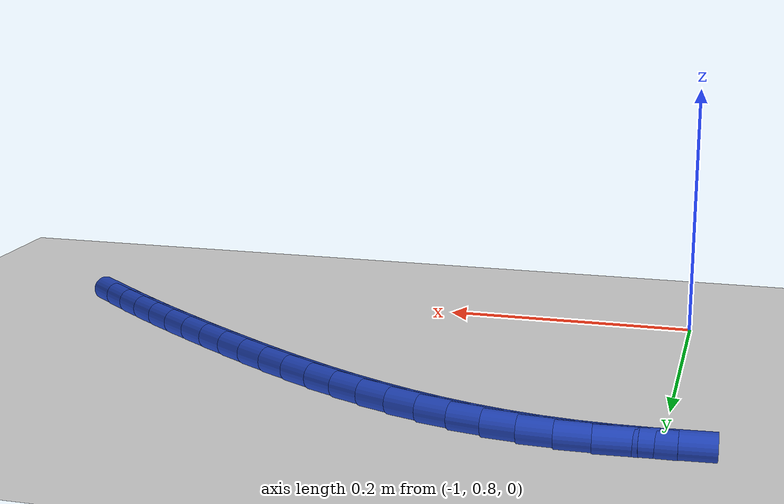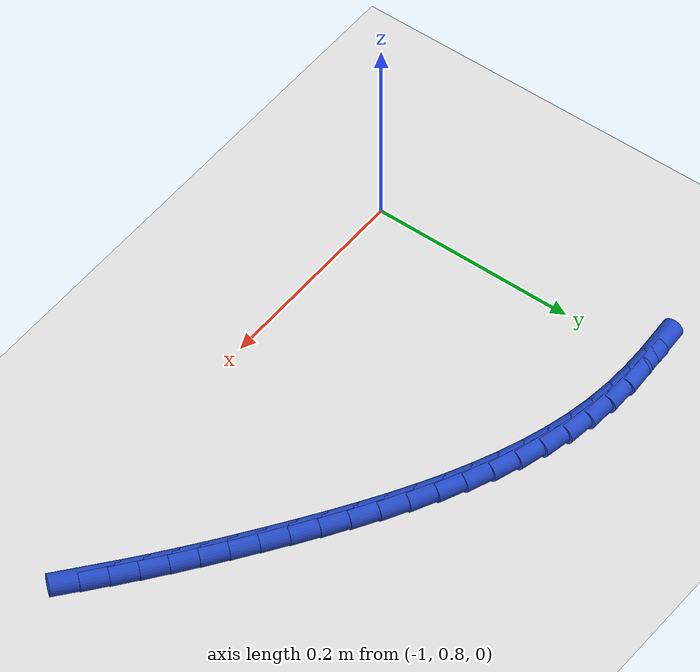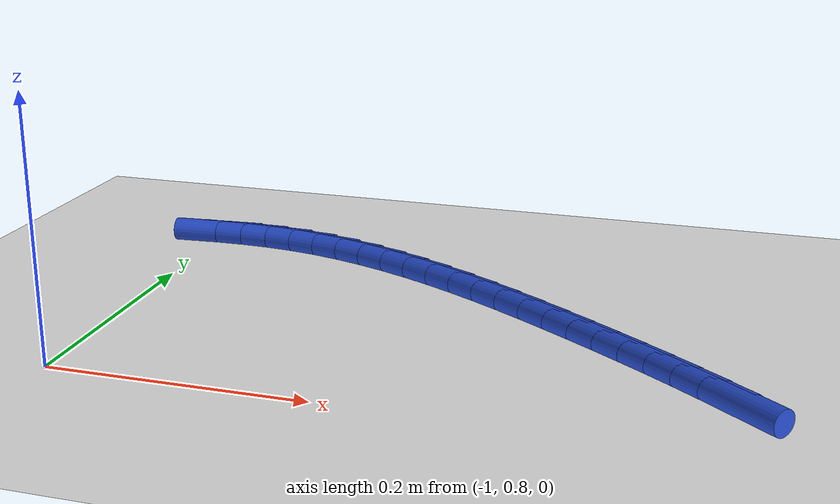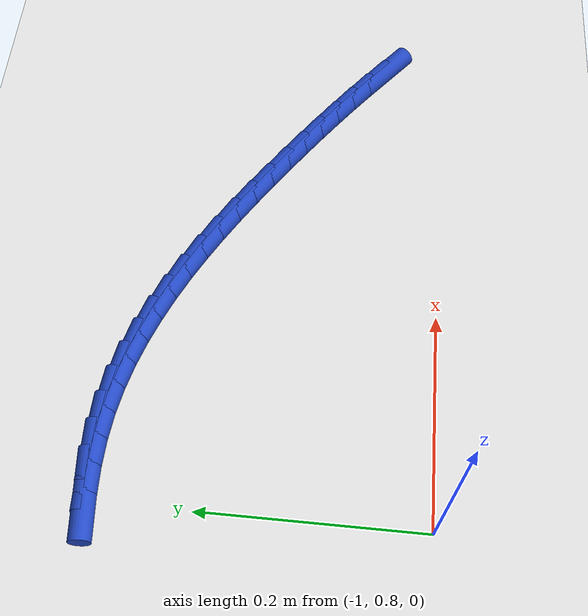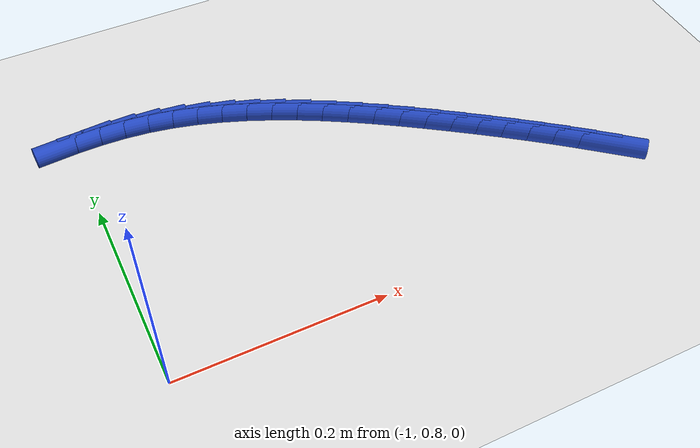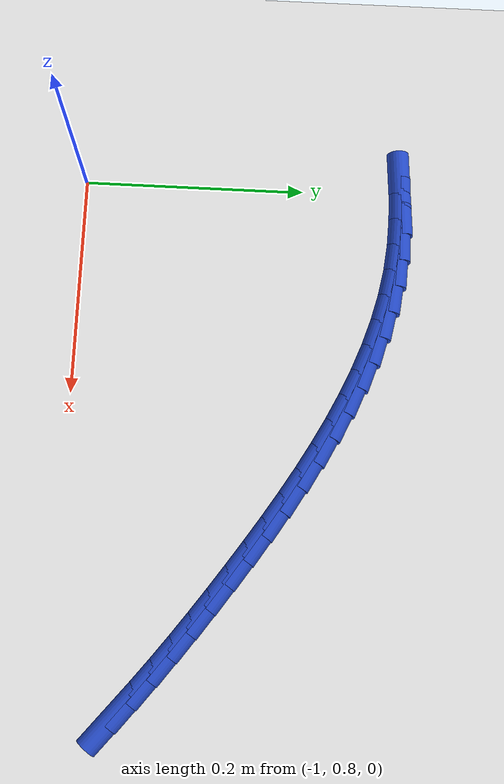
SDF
<sdf version="1.6">
 <world name="default">
  <model name="ground_plane">
   <static>1</static>
   <link name="link">
    <collision name="collision">
     <geometry><plane><normal>0 0 1</normal><size>100 100</size></plane></geometry>
     <surface><friction><ode><mu>100</mu><mu2>50</mu2></ode></friction></surface>
    </collision>
    <visual name="visual">
     <cast_shadows>0</cast_shadows>
     <geometry><plane><normal>0 0 1</normal><size>100 100</size></plane></geometry>
     <material>
      <script><uri>file://media/materials/scripts/gazebo.material</uri><name>Gazebo/WhiteGlow</name></script>
     </material>
    </visual>
   </link>
  </model>
  <model name="line">
   <link name="link_42">
    <pose>-0.5254788064829464 0.8629752930434779 0.01 0 1.57 -0.6861760715650963</pose>
    <collision name="collision">
     <geometry><cylinder><radius>0.01</radius><length>0.08</length></cylinder></geometry>
    </collision>
    <visual name="visual">
     <material>
      <script><name>Gazebo/Blue</name><uri>file://media/materials/scripts/gazebo.material</uri></script>
     </material>
     <geometry><cylinder><radius>0.01</radius><length>0.08</length></cylinder></geometry>
    </visual>
   </link>
   <link name="link_43">
    <pose>-0.5449400351968171 0.8789126301467078 0.01 0 1.57 -0.667919222868921</pose>
    <collision name="collision">
     <geometry><cylinder><radius>0.01</radius><length>0.08</length></cylinder></geometry>
    </collision>
    <visual name="visual">
     <material>
      <script><name>Gazebo/Blue</name><uri>file://media/materials/scripts/gazebo.material</uri></script>
     </material>
     <geometry><cylinder><radius>0.01</radius><length>0.08</length></cylinder></geometry>
    </visual>
   </link>
   <link name="link_44">
    <pose>-0.5647092118277424 0.8945079984835582 0.01 0 1.57 -0.651163459229971</pose>
    <collision name="collision">
     <geometry><cylinder><radius>0.01</radius><length>0.08</length></cylinder></geometry>
    </collision>
    <visual name="visual">
     <material>
      <script><name>Gazebo/Blue</name><uri>file://media/materials/scripts/gazebo.material</uri></script>
     </material>
     <geometry><cylinder><radius>0.01</radius><length>0.08</length></cylinder></geometry>
    </visual>
   </link>
   <link name="link_45">
    <pose>-0.5847929272959351 0.909812630373385 0.01 0 1.57 -0.6360166915280844</pose>
    <collision name="collision">
     <geometry><cylinder><radius>0.01</radius><length>0.08</length></cylinder></geometry>
    </collision>
    <visual name="visual">
     <material>
      <script><name>Gazebo/Blue</name><uri>file://media/materials/scripts/gazebo.material</uri></script>
     </material>
     <geometry><cylinder><radius>0.01</radius><length>0.08</length></cylinder></geometry>
    </visual>
   </link>
   <link name="link_46">
    <pose>-0.605197287805426 0.9248786115096992 0.01 0 1.57 -0.6225288436877654</pose>
    <collision name="collision">
     <geometry><cylinder><radius>0.01</radius><length>0.08</length></cylinder></geometry>
    </collision>
    <visual name="visual">
     <material>
      <script><name>Gazebo/Blue</name><uri>file://media/materials/scripts/gazebo.material</uri></script>
     </material>
     <geometry><cylinder><radius>0.01</radius><length>0.08</length></cylinder></geometry>
    </visual>
   </link>
   <link name="link_47">
    <pose>-0.6259283995602454 0.9397580275860117 0.01 0 1.57 -0.6107310070769285</pose>
    <collision name="collision">
     <geometry><cylinder><radius>0.01</radius><length>0.08</length></cylinder></geometry>
    </collision>
    <visual name="visual">
     <material>
      <script><name>Gazebo/Blue</name><uri>file://media/materials/scripts/gazebo.material</uri></script>
     </material>
     <geometry><cylinder><radius>0.01</radius><length>0.08</length></cylinder></geometry>
    </visual>
   </link>
   <link name="link_48">
    <pose>-0.6469923687644236 0.9545029642958331 0.01 0 1.57 -0.6001465090100524</pose>
    <collision name="collision">
     <geometry><cylinder><radius>0.01</radius><length>0.08</length></cylinder></geometry>
    </collision>
    <visual name="visual">
     <material>
      <script><name>Gazebo/Blue</name><uri>file://media/materials/scripts/gazebo.material</uri></script>
     </material>
     <geometry><cylinder><radius>0.01</radius><length>0.08</length></cylinder></geometry>
    </visual>
   </link>
   <link name="link_49">
    <pose>-0.6683937288089691 0.9691490259500634 0.01 0 1.57 -0.5870535563652751</pose>
    <collision name="collision">
     <geometry><cylinder><radius>0.01</radius><length>0.08</length></cylinder></geometry>
    </collision>
    <visual name="visual">
     <material>
      <script><name>Gazebo/Blue</name><uri>file://media/materials/scripts/gazebo.material</uri></script>
     </material>
     <geometry><cylinder><radius>0.01</radius><length>0.08</length></cylinder></geometry>
    </visual>
   </link>
   <link name="link_50">
    <pose>-0.6901250851858581 0.9836068253539899 0.01 0 1.57 -0.5696935325997188</pose>
    <collision name="collision">
     <geometry><cylinder><radius>0.01</radius><length>0.08</length></cylinder></geometry>
    </collision>
    <visual name="visual">
     <material>
      <script><name>Gazebo/Blue</name><uri>file://media/materials/scripts/gazebo.material</uri></script>
     </material>
     <geometry><cylinder><radius>0.01</radius><length>0.08</length></cylinder></geometry>
    </visual>
   </link>
   <link name="link_51">
    <pose>-0.7121735760202119 0.9977296832103163 0.01 0 1.57 -0.5479281256998118</pose>
    <collision name="collision">
     <geometry><cylinder><radius>0.01</radius><length>0.08</length></cylinder></geometry>
    </collision>
    <visual name="visual">
     <material>
      <script><name>Gazebo/Blue</name><uri>file://media/materials/scripts/gazebo.material</uri></script>
     </material>
     <geometry><cylinder><radius>0.01</radius><length>0.08</length></cylinder></geometry>
    </visual>
   </link>
   <link name="link_52">
    <pose>-0.7345263109401052 1.0113706216034608 0.01 0 1.57 -0.5215584401308614</pose>
    <collision name="collision">
     <geometry><cylinder><radius>0.01</radius><length>0.08</length></cylinder></geometry>
    </collision>
    <visual name="visual">
     <material>
      <script><name>Gazebo/Blue</name><uri>file://media/materials/scripts/gazebo.material</uri></script>
     </material>
     <geometry><cylinder><radius>0.01</radius><length>0.08</length></cylinder></geometry>
    </visual>
   </link>
   <link name="link_53">
    <pose>-0.7571703995736125 1.0243826626178403 0.01 0 1.57 -0.49032422655534197</pose>
    <collision name="collision">
     <geometry><cylinder><radius>0.01</radius><length>0.08</length></cylinder></geometry>
    </collision>
    <visual name="visual">
     <material>
      <script><name>Gazebo/Blue</name><uri>file://media/materials/scripts/gazebo.material</uri></script>
     </material>
     <geometry><cylinder><radius>0.01</radius><length>0.08</length></cylinder></geometry>
    </visual>
   </link>
   <link name="link_54">
    <pose>-0.7800929515488084 1.0366188283378728 0.01 0 1.57 -0.4539147878214248</pose>
    <collision name="collision">
     <geometry><cylinder><radius>0.01</radius><length>0.08</length></cylinder></geometry>
    </collision>
    <visual name="visual">
     <material>
      <script><name>Gazebo/Blue</name><uri>file://media/materials/scripts/gazebo.material</uri></script>
     </material>
     <geometry><cylinder><radius>0.01</radius><length>0.08</length></cylinder></geometry>
    </visual>
   </link>
   <link name="link_55">
    <pose>-0.8032810764937679 1.0479321408479756 0.01 0 1.57 -0.41198526524598034</pose>
    <collision name="collision">
     <geometry><cylinder><radius>0.01</radius><length>0.08</length></cylinder></geometry>
    </collision>
    <visual name="visual">
     <material>
      <script><name>Gazebo/Blue</name><uri>file://media/materials/scripts/gazebo.material</uri></script>
     </material>
     <geometry><cylinder><radius>0.01</radius><length>0.08</length></cylinder></geometry>
    </visual>
   </link>
   <link name="link_56">
    <pose>-0.826721884036565 1.058175622232566 0.01 0 1.57 -0.36418144966591903</pose>
    <collision name="collision">
     <geometry><cylinder><radius>0.01</radius><length>0.08</length></cylinder></geometry>
    </collision>
    <visual name="visual">
     <material>
      <script><name>Gazebo/Blue</name><uri>file://media/materials/scripts/gazebo.material</uri></script>
     </material>
     <geometry><cylinder><radius>0.01</radius><length>0.08</length></cylinder></geometry>
    </visual>
   </link>
   <link name="link_57">
    <pose>-0.8504024838052747 1.0672022945760624 0.01 0 1.57 -0.3101765805159727</pose>
    <collision name="collision">
     <geometry><cylinder><radius>0.01</radius><length>0.08</length></cylinder></geometry>
    </collision>
    <visual name="visual">
     <material>
      <script><name>Gazebo/Blue</name><uri>file://media/materials/scripts/gazebo.material</uri></script>
     </material>
     <geometry><cylinder><radius>0.01</radius><length>0.08</length></cylinder></geometry>
    </visual>
   </link>
   <link name="link_58">
    <pose>-0.8743099854279718 1.0748651799628821 0.01 0 1.57 -0.24972314839626608</pose>
    <collision name="collision">
     <geometry><cylinder><radius>0.01</radius><length>0.08</length></cylinder></geometry>
    </collision>
    <visual name="visual">
     <material>
      <script><name>Gazebo/Blue</name><uri>file://media/materials/scripts/gazebo.material</uri></script>
     </material>
     <geometry><cylinder><radius>0.01</radius><length>0.08</length></cylinder></geometry>
    </visual>
   </link>
   <link name="link_59">
    <pose>-0.8984314985327306 1.081017300477442 0.01 0 1.57 -0.18272068318258286</pose>
    <collision name="collision">
     <geometry><cylinder><radius>0.01</radius><length>0.08</length></cylinder></geometry>
    </collision>
    <visual name="visual">
     <material>
      <script><name>Gazebo/Blue</name><uri>file://media/materials/scripts/gazebo.material</uri></script>
     </material>
     <geometry><cylinder><radius>0.01</radius><length>0.08</length></cylinder></geometry>
    </visual>
   </link>
   <link name="link_60">
    <pose>-0.9227541327476254 1.08551167820416 0.01 0 1.57 -0.10997051564813641</pose>
    <collision name="collision">
     <geometry><cylinder><radius>0.01</radius><length>0.08</length></cylinder></geometry>
    </collision>
    <visual name="visual">
     <material>
      <script><name>Gazebo/Blue</name><uri>file://media/materials/scripts/gazebo.material</uri></script>
     </material>
     <geometry><cylinder><radius>0.01</radius><length>0.08</length></cylinder></geometry>
    </visual>
   </link>
   <link name="link_61">
    <pose>-0.9472652169422685 1.0882180936027712 0.01 0 1.57 -0.0405916437221647</pose>
    <collision name="collision">
     <geometry><cylinder><radius>0.01</radius><length>0.08</length></cylinder></geometry>
    </collision>
    <visual name="visual">
     <material>
      <script><name>Gazebo/Blue</name><uri>file://media/materials/scripts/gazebo.material</uri></script>
     </material>
     <geometry><cylinder><radius>0.01</radius><length>0.08</length></cylinder></geometry>
    </visual>
   </link>
   <link name="link_62">
    <pose>-0.9719548863345251 1.089220838661706 0.01 0 1.57 0.018833948515527273</pose>
    <collision name="collision">
     <geometry><cylinder><radius>0.01</radius><length>0.08</length></cylinder></geometry>
    </collision>
    <visual name="visual">
     <material>
      <script><name>Gazebo/Blue</name><uri>file://media/materials/scripts/gazebo.material</uri></script>
     </material>
     <geometry><cylinder><radius>0.01</radius><length>0.08</length></cylinder></geometry>
    </visual>
   </link>
   <link name="link_63">
    <pose>-0.9968152170592917 1.0887525651031538 0.01 0 1.57 0.06797931857357559</pose>
    <collision name="collision">
     <geometry><cylinder><radius>0.01</radius><length>0.08</length></cylinder></geometry>
    </collision>
    <visual name="visual">
     <material>
      <script><name>Gazebo/Blue</name><uri>file://media/materials/scripts/gazebo.material</uri></script>
     </material>
     <geometry><cylinder><radius>0.01</radius><length>0.08</length></cylinder></geometry>
    </visual>
   </link>
  </model>
 </world>
</sdf>
